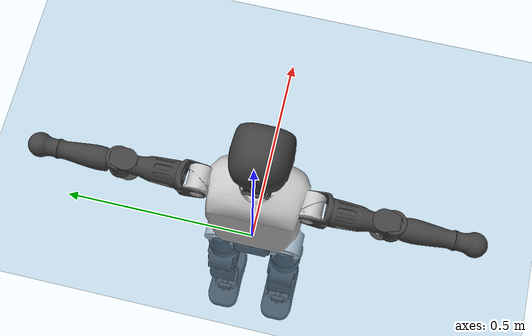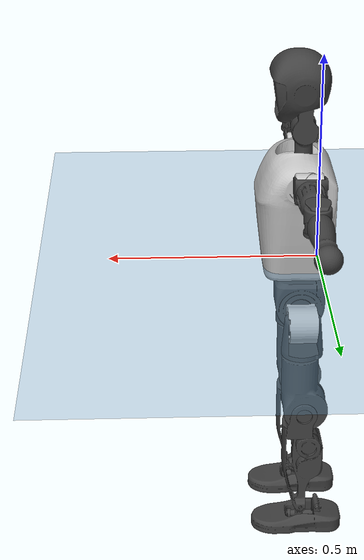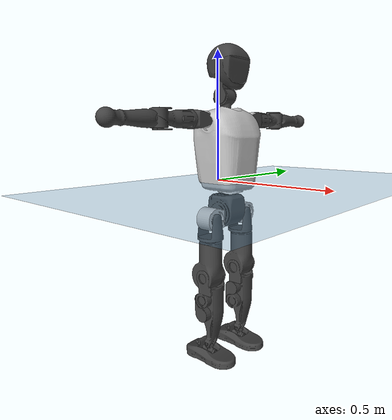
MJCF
<mujoco model="T1">
  <compiler angle="radian" assetdir="assets" balanceinertia="true" inertiafromgeom="false"/>

  <option timestep="0.005" density="1.2" viscosity="2e-05"/>

  <size nkey="1"/>

  <visual>
    <quality shadowsize="8192"/>
    <map shadowclip="0.5"/>
  </visual>

  <default>
    <default class="/">
      <joint armature="0.01" damping="0.01" frictionloss="0.1"/>
      <geom contype="0" conaffinity="0" group="1" solref="-1000 -80"/>
      <site size="0.01 0.005 0.005" group="5"/>
      <general forcelimited="true" biastype="affine" gainprm="25" biasprm="0 -25 -0.6"/>
      <default class="t1">
        <geom rgba="0.25 0.25 0.25 1"/>
        <default class="visual">
          <geom type="mesh" group="2"/>
        </default>
        <default class="collision">
          <geom group="3"/>
        </default>
        <default class="foot">
          <geom size="0.1115 0.05 0.015" type="box" condim="6" group="4" priority="1" solimp="0.015 1 0.015"/>
        </default>
        <default class="reward_collision_sphere">
          <geom group="5" rgba="1 0 0 1"/>
        </default>
      </default>
    </default>
  </default>

  <asset>
    <texture type="skybox" colorspace="auto" name="//unnamed_texture_0" builtin="gradient" rgb1="0.95 0.95 0.95" rgb2="0.95 0.95 0.95" width="100" height="600"/>
    <texture type="2d" colorspace="auto" name="texplane" builtin="checker" rgb1="0.345 0.575 0.748" rgb2="0.345 0.575 0.748" markrgb="1 1 1" width="512" height="512"/>
    <material name="MatPlane" class="/" texture="texplane" texuniform="true" texrepeat="2 2" specular="0.9"/>
    <mesh name="Trunk" class="/" file="Trunk.stl"/>
    <mesh name="H1" class="/" file="H1.stl"/>
    <mesh name="H2" class="/" file="H2.stl"/>
    <mesh name="AL1" class="/" file="AL1.stl"/>
    <mesh name="AL2" class="/" file="AL2.stl"/>
    <mesh name="AL3" class="/" file="AL3.stl"/>
    <mesh name="left_hand_link" class="/" file="left_hand_link.stl"/>
    <mesh name="AR1" class="/" file="AR1.stl"/>
    <mesh name="AR2" class="/" file="AR2.stl"/>
    <mesh name="AR3" class="/" file="AR3.stl"/>
    <mesh name="right_hand_link" class="/" file="right_hand_link.stl"/>
    <mesh name="Waist" class="/" file="Waist.stl"/>
    <mesh name="Hip_Pitch_Left" class="/" file="Hip_Pitch_Left.stl"/>
    <mesh name="Hip_Roll_Left" class="/" file="Hip_Roll_Left.stl"/>
    <mesh name="Hip_Yaw_Left" class="/" file="Hip_Yaw_Left.stl"/>
    <mesh name="Shank_Left" class="/" file="Shank_Left.stl"/>
    <mesh name="Ankle_Cross_Left" class="/" file="Ankle_Cross_Left.stl"/>
    <mesh name="left_foot_link" class="/" file="left_foot_link.stl"/>
    <mesh name="Hip_Pitch_Right" class="/" file="Hip_Pitch_Right.stl"/>
    <mesh name="Hip_Roll_Right" class="/" file="Hip_Roll_Right.stl"/>
    <mesh name="Hip_Yaw_Right" class="/" file="Hip_Yaw_Right.stl"/>
    <mesh name="Shank_Right" class="/" file="Shank_Right.stl"/>
    <mesh name="Ankle_Cross_Right" class="/" file="Ankle_Cross_Right.stl"/>
    <mesh name="right_foot_link" class="/" file="right_foot_link.stl"/>
  </asset>

  <worldbody>
    <geom name="floor" class="/" size="100 100 0.125" type="plane" group="0" material="MatPlane"/>
    <light name="toplight_shadow" class="/" pos="0 0 5" dir="0.0990148 0.0990148 -0.990148" type="directional" ambient="0.04 0.04 0.04" diffuse="0.55 0.55 0.55" specular="0.12 0.12 0.12"/>
    <light name="toplight_fill" class="/" pos="0 0 5" dir="0.0990148 0.0990148 -0.990148" type="directional" castshadow="false" ambient="0.04 0.04 0.04" diffuse="0.3 0.3 0.3" specular="0.08 0.08 0.08"/>
    <body name="trunk" childclass="t1" pos="-0.000994387 -3.96725e-06 0.00258496" quat="0.999999 -0.000171891 -0.00120578 1.83322e-05">
      <inertial pos="0.0341474 -0.00249879 0.113897" quat="0.999953 0.00133488 -0.00944472 0.00158568" mass="7.3425" diaginertia="0.0136454 0.0339537 0.0770774"/>
      <joint name="//unnamed_joint_0" type="free" armature="0" damping="0" frictionloss="0"/>
      <geom name="//unnamed_geom_1" class="visual" rgba="0.76 0.76 0.76 1" mesh="Trunk"/>
      <geom name="//unnamed_geom_2" class="collision" size="0.0647313 0.0863084 0.129463" pos="0.0406718 0 0.127326" type="box"/>
      <geom name="//unnamed_geom_3" class="reward_collision_sphere" size="0.0992546" pos="0.0406718 0 0.106105"/>
      <geom name="//unnamed_geom_4" class="reward_collision_sphere" size="0.0129463" pos="0.0406718 0.0722784 0"/>
      <geom name="//unnamed_geom_5" class="reward_collision_sphere" size="0.0129463" pos="0.0406718 -0.0722784 0"/>
      <geom name="//unnamed_geom_6" class="reward_collision_sphere" size="0.0129463" pos="0.0406718 0.0909858 0.19099"/>
      <geom name="//unnamed_geom_7" class="reward_collision_sphere" size="0.0129463" pos="0.0406718 -0.0909858 0.19099"/>
      <site name="imu" pos="-0.00274529 0.00141772 -0.00350017" size="0.00863084"/>
      <camera name="track" pos="0 -1.70067 0" quat="0.707107 0.707107 0 0" mode="trackcom"/>
      <camera name="ego_camera" pos="0.0826994 0 0.445643" quat="-0.5 -0.5 0.5 0.5"/>
      <body name="H1" pos="0.0420467 -0.00128516 0.255492" quat="1 0.000371802 -5.09126e-05 0.000215711">
        <inertial pos="-0.000653511 -0.0021678 0.0631451" quat="0.763286 -0.0124889 0.00159702 0.645938" mass="0.290123" diaginertia="3.42641e-05 0.000103728 0.000204214"/>
        <joint name="AAHead_yaw" pos="0 0 0" axis="0.0051404 -0.0123254 0.999911" range="-1.56408 1.58833" armature="0.00890614" damping="0.00358209" frictionloss="0.0850963"/>
        <geom name="//unnamed_geom_8" class="visual" mesh="H1"/>
        <body name="H2" pos="-0.000787127 -0.00289104 0.0656933" quat="0.999999 -0.00119264 -0.000392931 -0.000590713">
          <inertial pos="0.00573547 0.000265602 0.105606" quat="0.988782 0.104823 -0.0720693 -0.0782871" mass="0.399259" diaginertia="0.000289093 0.000869576 0.00240832"/>
          <joint name="Head_pitch" pos="0 0 0" axis="-0.00917103 -0.999923 0.00837536" stiffness="0.0084288" range="-1.23521 0.295449" armature="0.00983002" damping="0" frictionloss="0.0871041"/>
          <geom name="//unnamed_geom_9" class="visual" mesh="H2"/>
          <geom name="//unnamed_geom_10" class="collision" size="0.0690467" pos="0.00677864 0 0.116716"/>
          <geom name="//unnamed_geom_11" class="reward_collision_sphere" size="0.0776775" pos="0.0135573 0 0.106105"/>
        </body>
      </body>
      <body name="AL1" pos="0.041441 0.0935458 0.23478" quat="0.999999 0.00109418 0.000609208 0.000358493">
        <inertial pos="-0.000996281 0.0399814 -0.000292971" quat="0.505098 0.494731 -0.505054 0.495013" mass="0.337605" diaginertia="0.000202778 0.000558608 0.000382072"/>
        <joint name="Left_Shoulder_Pitch" pos="0 0 0" axis="-0.000287528 0.999995 -0.00312587" range="-3.25243 1.23187" armature="0.0078186" damping="0.0025032" frictionloss="0.0746003"/>
        <geom name="//unnamed_geom_12" class="visual" rgba="0.76 0.76 0.76 1" mesh="AL1"/>
        <body name="AL2" pos="-0.0018831 0.0438666 7.79162e-05" quat="1 1.41778e-05 -0.000101943 -0.000108772">
          <inertial pos="0.00217782 0.0307792 0.00120194" quat="0.490036 0.510153 -0.490914 0.508539" mass="0.108017" diaginertia="5.90178e-05 0.000156256 0.000253781"/>
          <joint name="Left_Shoulder_Roll" pos="0 0 0" axis="-0.999985 0.00262526 0.00475161" stiffness="0.0100719" range="-1.55726 1.75479" armature="0.00842467" damping="0" frictionloss="0.0857943"/>
          <geom name="//unnamed_geom_13" class="visual" mesh="AL2"/>
          <body name="AL3" pos="0.00298131 0.0524224 -0.000562034" quat="1 0.000155369 -3.96905e-05 -8.47504e-05">
            <inertial pos="0.00233558 0.0725681 1.26292e-05" quat="0.707509 0.706568 0.00341154 -0.0134704" mass="0.637348" diaginertia="0.00173622 0.0057158 0.000811885"/>
            <joint name="Left_Elbow_Pitch" pos="0 0 0" axis="0.00054739 -1 0.000765508" stiffness="0.00475653" range="-2.26169 2.30943" armature="0.00883339" damping="0.021306" frictionloss="0.0758412"/>
            <geom name="//unnamed_geom_14" class="visual" mesh="AL3"/>
            <geom name="//unnamed_geom_15" class="collision" size="0.0258925 0.0647313" pos="0 0.0425167 0" quat="0.707105 0.707108 0 0" type="cylinder"/>
            <geom name="//unnamed_geom_16" class="reward_collision_sphere" size="0.031071"/>
            <body name="left_hand_link" pos="-0.00192117 0.127556 0.000765415" quat="0.999999 0.00010396 -0.00112054 -0.000776019">
              <inertial pos="0.000855915 0.0936866 0.00325994" quat="0.708441 0.70577 -5.34502e-06 -0.000776468" mass="0.212941" diaginertia="0.00120895 0.00374475 0.00029645"/>
              <joint name="Left_Elbow_Yaw" pos="0 0 0" axis="-0.00725126 0.00754665 0.999945" range="-2.49816 -0.016571" armature="0.00895764" damping="0.00726484" frictionloss="0.0742608"/>
              <geom name="//unnamed_geom_17" class="visual" mesh="left_hand_link"/>
              <geom name="//unnamed_geom_18" class="collision" size="0.0258925 0.0755198" pos="0 0.110543 0" quat="0.707105 0.707108 0 0" type="cylinder"/>
              <geom name="//unnamed_geom_19" class="reward_collision_sphere" size="0.0431542"/>
              <geom name="//unnamed_geom_20" class="reward_collision_sphere" size="0.0302079" pos="0 0.0935368 0"/>
              <geom name="//unnamed_geom_21" class="reward_collision_sphere" size="0.0302079" pos="0 0.182822 0"/>
            </body>
          </body>
        </body>
      </body>
      <body name="AR1" pos="0.0370288 -0.0864416 0.2311" quat="1 0.000266936 0.000443923 -0.000114594">
        <inertial pos="-0.00144057 -0.0361009 0.00232167" quat="0.504889 0.494967 -0.504679 0.495372" mass="0.348314" diaginertia="0.000186436 0.000547842 0.000391186"/>
        <joint name="Right_Shoulder_Pitch" pos="0 0 0" axis="0.00160863 -0.99999 -0.00405486" stiffness="0.00151416" range="-1.22106 3.32011" armature="0.0081175" damping="0.0114655" frictionloss="0.0756882"/>
        <geom name="//unnamed_geom_22" class="visual" rgba="0.76 0.76 0.76 1" mesh="AR1"/>
        <body name="AR2" pos="-0.00202049 -0.041098 -0.000282724" quat="1 -0.000336814 -0.0003846 0.000765701">
          <inertial pos="0.00480654 -0.0323117 0.00316647" quat="0.511931 0.487742 -0.511163 0.488618" mass="0.103781" diaginertia="5.67205e-05 0.00015573 0.000245483"/>
          <joint name="Right_Shoulder_Roll" pos="0 0 0" axis="-0.999811 0.0178819 0.00767295" range="-1.68237 1.57612" armature="0.00776746" damping="0.0190102" frictionloss="0.0876324"/>
          <geom name="//unnamed_geom_23" class="visual" mesh="AR2"/>
          <body name="AR3" pos="5.62073e-05 -0.0524804 -9.64022e-05" quat="1 0.000120791 2.18986e-05 -3.22671e-05">
            <inertial pos="-0.000843496 -0.0733485 0.00190884" quat="0.714907 0.699195 0.00499294 0.00318583" mass="0.668986" diaginertia="0.00191113 0.0055378 0.000859218"/>
            <joint name="Right_Elbow_Pitch" pos="0 0 0" axis="0.0139394 0.999895 -0.00400882" stiffness="0.00706544" range="-2.21603 2.22327" armature="0.0086875" damping="0.0172441" frictionloss="0.0849946"/>
            <geom name="//unnamed_geom_24" class="visual" mesh="AR3"/>
            <geom name="//unnamed_geom_25" class="collision" size="0.0258925 0.0647313" pos="0 -0.0425167 0" quat="0.707105 0.707108 0 0" type="cylinder"/>
            <geom name="//unnamed_geom_26" class="reward_collision_sphere" size="0.031071"/>
            <body name="right_hand_link" pos="-0.000853291 -0.124788 -0.00187291" quat="0.999999 0.00137465 0.000152741 3.99823e-05">
              <inertial pos="-0.000588514 -0.0937657 -0.00141214" quat="0.707191 0.707016 0.00121421 0.00260271" mass="0.205498" diaginertia="0.00119648 0.00363194 0.000282013"/>
              <joint name="Right_Elbow_Yaw" pos="0 0 0" axis="0.00189435 0.00319858 0.999993" range="0.00201806 2.42413" armature="0.00850661" damping="0" frictionloss="0.0973933"/>
              <geom name="//unnamed_geom_27" class="visual" mesh="right_hand_link"/>
              <geom name="//unnamed_geom_28" class="collision" size="0.0258925 0.0755198" pos="0 -0.110543 0" quat="0.707105 0.707108 0 0" type="cylinder"/>
              <geom name="//unnamed_geom_29" class="reward_collision_sphere" size="0.0431542"/>
              <geom name="//unnamed_geom_30" class="reward_collision_sphere" size="0.0302079" pos="0 -0.0935368 0"/>
              <geom name="//unnamed_geom_31" class="reward_collision_sphere" size="0.0302079" pos="0 -0.182822 0"/>
            </body>
          </body>
        </body>
      </body>
      <body name="Waist" pos="0.0416395 0.00171217 -0.122852" quat="0.999999 0.000950312 0.000981276 0.000764436">
        <inertial pos="0.00202951 0.00185014 0.00814595" quat="0.983328 0.00205661 -0.181815 0.00204858" mass="1.57322" diaginertia="0.000746553 0.00224354 0.00641427"/>
        <joint name="Waist" pos="0 0 0" axis="2.19344e-05 -3.90327e-05 1" stiffness="0.00571856" range="-1.52591 1.52674" armature="0.007417" damping="0.0117141" frictionloss="0.088254"/>
        <geom name="//unnamed_geom_32" class="visual" mesh="Waist"/>
        <body name="Hip_Pitch_Left" pos="0.000194549 0.0919331 0.002272" quat="1 0.000133513 0.000220229 6.06268e-05">
          <inertial pos="-0.00180004 -0.00586928 -0.0181517" quat="0.976152 0.216512 0.0158127 0.000554522" mass="0.677302" diaginertia="0.000256935 0.000634556 0.00169003"/>
          <joint name="Left_Hip_Pitch" pos="0 0 0" axis="-0.00386206 0.999991 -0.00158145" stiffness="0.00222748" range="-1.83669 1.55374" armature="0.00761899" damping="0.0147104" frictionloss="0.0871371"/>
          <geom name="//unnamed_geom_33" class="visual" rgba="0.76 0.76 0.76 1" mesh="Hip_Pitch_Left"/>
          <body name="Hip_Roll_Left" pos="0.00061464 -0.00351608 -0.0209287" quat="1 -0.000121178 0.000649731 0.000161241">
            <inertial pos="0.00329973 -0.0029319 -0.0576307" quat="0.705538 -0.00721367 -0.00639266 0.708607" mass="0.244638" diaginertia="0.00025282 0.000682804 0.000713237"/>
            <joint name="Left_Hip_Roll" pos="0 0 0" axis="-0.999951 0.000348369 -0.00991997" range="-1.56424 0.184743" armature="0.00958621" damping="0.0176534" frictionloss="0.0850152"/>
            <geom name="//unnamed_geom_34" class="visual" mesh="Hip_Roll_Left"/>
            <geom name="//unnamed_geom_35" class="reward_collision_sphere" size="0.0474696"/>
            <body name="Hip_Yaw_Left" pos="0.00194178 0.00278219 -0.0847343" quat="1 -3.40527e-05 -0.000237312 9.53281e-05">
              <inertial pos="-0.00498049 -0.000940607 -0.0939307" quat="0.692896 -0.0415964 -0.0332938 0.719067" mass="1.39987" diaginertia="0.00368342 0.0112518 0.00349879"/>
              <joint name="Left_Hip_Yaw" pos="0 0 0" axis="-0.00770979 -0.00374366 -0.999963" stiffness="0.00926009" range="-0.980615 1.02502" armature="0.00843302" damping="0" frictionloss="0.0975567"/>
              <geom name="//unnamed_geom_36" class="visual" mesh="Hip_Yaw_Left"/>
              <geom name="//unnamed_geom_37" class="collision" size="0.0431542 0.0690467" type="cylinder"/>
              <body name="Shank_Left" pos="-0.0106006 -0.000769024 -0.145548" quat="0.999999 0.000817551 -0.000582071 0.000474525">
                <inertial pos="-0.0042457 -0.00237919 -0.129337" quat="0.997733 -0.00248475 -0.0203719 0.064097" mass="1.08386" diaginertia="0.0048578 0.0156469 0.00245957"/>
                <joint name="Left_Knee_Pitch" pos="0 0 0" axis="0.00383426 0.999834 0.0178212" stiffness="0.00087717" range="0.0147284 2.30949" armature="0.0096704" damping="0" frictionloss="0.0867827"/>
                <geom name="//unnamed_geom_38" class="visual" mesh="Shank_Left"/>
                <geom name="//unnamed_geom_39" class="collision" size="0.0431542 0.0647313" pos="0 0 -0.127326" type="cylinder"/>
                <geom name="//unnamed_geom_40" class="reward_collision_sphere" size="0.0561005"/>
                <body name="Ankle_Cross_Left" pos="0.00257637 -0.00262861 -0.298556" quat="0.999999 0.000335466 0.00131974 0.000524509">
                  <inertial pos="-0.00214327 -0.00112543 -0.00634375" quat="0.438278 0.559991 0.546929 0.441804" mass="0.046212" diaginertia="4.34165e-06 1.16598e-05 1.55911e-05"/>
                  <joint name="Left_Ankle_Pitch" pos="0 0 0" axis="-0.00156494 0.999995 -0.0027362" stiffness="0.00352411" range="-0.874717 0.358878" armature="0.00984449" damping="0.0130698" frictionloss="0.0981528"/>
                  <geom name="//unnamed_geom_41" class="visual" mesh="Ankle_Cross_Left"/>
                  <body name="left_foot_link" pos="-0.00308821 -0.00310337 -0.0139923" quat="1 2.20234e-05 0.000155548 -5.75206e-06">
                    <inertial pos="-0.00196721 0.00171329 -0.0103839" quat="-0.0066207 0.619607 -0.00768619 0.784847" mass="0.435677" diaginertia="0.000368349 0.00103455 0.00288946"/>
                    <joint name="Left_Ankle_Roll" pos="0 0 0" axis="-0.999972 -0.00684193 -0.00314527" range="-0.453237 0.442239" armature="0.00879094" damping="0.00946273" frictionloss="0.0821174"/>
                    <geom name="//unnamed_geom_42" class="visual" mesh="left_foot_link"/>
                    <geom name="left_foot" class="foot" size="0.10315 0.0436998 0.0124059" pos="0.00677864 0 -0.0159158"/>
                    <geom name="//unnamed_geom_44" class="reward_collision_sphere" size="0.0448804" pos="0.00677864 0 -0.0159158"/>
                    <geom name="//unnamed_geom_45" class="reward_collision_sphere" size="0.0258925" pos="0.064397 -0.0195577 -0.0159158"/>
                    <geom name="//unnamed_geom_46" class="reward_collision_sphere" size="0.0258925" pos="-0.0474504 -0.0195577 -0.0159158"/>
                    <site name="left_foot" class="foot" pos="0.00677864 0 -0.0159158" size="0.00863084"/>
                  </body>
                </body>
              </body>
            </body>
          </body>
        </body>
        <body name="Hip_Pitch_Right" pos="-0.00168509 -0.0909098 0.000697937" quat="1 -0.000664296 -0.000225715 -0.000329511">
          <inertial pos="-0.00235682 0.00647169 -0.0216914" quat="0.973484 -0.228239 0.0147087 -0.00444752" mass="0.637034" diaginertia="0.000259894 0.000675458 0.00163589"/>
          <joint name="Right_Hip_Pitch" pos="0 0 0" axis="0.00215909 -0.999998 -0.000403173" range="-1.5892 1.74238" armature="0.00964703" damping="0.00837061" frictionloss="0.0855148"/>
          <geom name="//unnamed_geom_47" class="visual" rgba="0.76 0.76 0.76 1" mesh="Hip_Pitch_Right"/>
          <body name="Hip_Roll_Right" pos="0.00165924 -0.00173694 -0.0216565" quat="1 -0.00023229 0.000237373 0.000748816">
            <inertial pos="0.000943551 0.00259005 -0.0571422" quat="0.712231 0.000706216 -0.000666493 0.701945" mass="0.245524" diaginertia="0.000250624 0.000677926 0.000692128"/>
            <joint name="Right_Hip_Roll" pos="0 0 0" axis="-0.999868 0.00914751 0.013454" stiffness="0.0185689" range="-0.214057 1.56322" armature="0.00729658" damping="0.00811954" frictionloss="0.0865432"/>
            <geom name="//unnamed_geom_48" class="visual" mesh="Hip_Roll_Right"/>
            <geom name="//unnamed_geom_49" class="reward_collision_sphere" size="0.0474696"/>
            <body name="Hip_Yaw_Right" pos="-0.0016301 -0.000960045 -0.0870751" quat="1 -5.68766e-05 -3.50243e-05 -0.000101462">
              <inertial pos="-0.0070758 -0.000250843 -0.0946031" quat="0.718727 -0.0382175 -0.0357054 0.693323" mass="1.44" diaginertia="0.00368326 0.011351 0.00351759"/>
              <joint name="Right_Hip_Yaw" pos="0 0 0" axis="-0.00238939 -0.00860484 -0.99996" range="-0.976187 0.947421" armature="0.00836889" damping="0" frictionloss="0.0860704"/>
              <geom name="//unnamed_geom_50" class="visual" mesh="Hip_Yaw_Right"/>
              <geom name="//unnamed_geom_51" class="collision" size="0.0431542 0.0690467" type="cylinder"/>
              <body name="Shank_Right" pos="-0.00770771 0.001506 -0.139467" quat="1 0.000487741 -0.000288918 -3.86845e-05">
                <inertial pos="-0.00469148 0.00131855 -0.132912" quat="0.999432 0.000165485 -0.0253712 -0.0221596" mass="1.09096" diaginertia="0.00493558 0.0154741 0.00257593"/>
                <joint name="Right_Knee_Pitch" pos="0 0 0" axis="-0.0033902 -0.99998 0.00534544" stiffness="0.0012473" range="-2.32224 0.0110959" armature="0.00970355" damping="0" frictionloss="0.0952429"/>
                <geom name="//unnamed_geom_52" class="visual" mesh="Shank_Right"/>
                <geom name="//unnamed_geom_53" class="collision" size="0.0431542 0.0647313" pos="0 0 -0.127326" type="cylinder"/>
                <geom name="//unnamed_geom_54" class="reward_collision_sphere" size="0.0561005"/>
                <body name="Ankle_Cross_Right" pos="-0.00311382 -0.00047758 -0.29725" quat="1 -1.9356e-06 -0.000161798 0.00023646">
                  <inertial pos="-0.0036566 0.000828247 -0.00862617" quat="0.442379 0.548031 0.553983 0.443921" mass="0.0466241" diaginertia="4.11625e-06 1.14129e-05 1.48812e-05"/>
                  <joint name="Right_Ankle_Pitch" pos="0 0 0" axis="0.0105362 -0.999942 0.00230922" stiffness="0.00678316" range="-0.406698 0.871839" armature="0.00901544" damping="0.0185012" frictionloss="0.0873726"/>
                  <geom name="//unnamed_geom_55" class="visual" mesh="Ankle_Cross_Right"/>
                  <body name="right_foot_link" pos="0.000636059 -0.00168203 -0.01497" quat="1 0.000496256 -0.000856252 0.000118692">
                    <inertial pos="-0.00221309 -0.000591935 -0.00979786" quat="-0.00275405 0.620801 -0.0102316 0.783897" mass="0.440007" diaginertia="0.000382628 0.0010233 0.00284441"/>
                    <joint name="Right_Ankle_Roll" pos="0 0 0" axis="-0.999993 -0.00111874 0.00359174" stiffness="0.00807572" range="-0.383648 0.383027" armature="0.00948632" damping="0.00817013" frictionloss="0.0921124"/>
                    <geom name="//unnamed_geom_56" class="visual" mesh="right_foot_link"/>
                    <geom name="right_foot" class="foot" size="0.089765 0.0429976 0.0130561" pos="0.00677864 0 -0.0159158"/>
                    <geom name="//unnamed_geom_58" class="reward_collision_sphere" size="0.0345234"/>
                    <geom name="//unnamed_geom_59" class="reward_collision_sphere" size="0.0258925" pos="0.00677864 0 -0.0159158"/>
                    <geom name="//unnamed_geom_60" class="reward_collision_sphere" size="0.0258925" pos="0.064397 0.0195577 -0.0159158"/>
                    <geom name="//unnamed_geom_61" class="reward_collision_sphere" size="0.0258925" pos="-0.0474504 0.0195577 -0.0159158"/>
                    <site name="right_foot" class="foot" pos="0.00677864 0 -0.0159158" size="0.00863084"/>
                  </body>
                </body>
              </body>
            </body>
          </body>
        </body>
      </body>
    </body>
  </worldbody>

  <contact>
    <pair class="/" geom1="floor" geom2="left_foot" name="//unnamed_contact_0"/>
    <pair class="/" geom1="floor" geom2="right_foot" name="//unnamed_contact_1"/>
  </contact>

  <actuator>
    <general name="AAHead_yaw" class="/" joint="AAHead_yaw" forcerange="-5.57125 5.57125" gainprm="21.338" biasprm="0 -21.338 -0.48059"/>
    <general name="Head_pitch" class="/" joint="Head_pitch" forcerange="-6.38501 6.38501" gainprm="21.338" biasprm="0 -21.338 -0.48059"/>
    <general name="Left_Shoulder_Pitch" class="/" joint="Left_Shoulder_Pitch" forcerange="-15.3547 15.3547" gainprm="21.338" biasprm="0 -21.338 -0.48059"/>
    <general name="Left_Shoulder_Roll" class="/" joint="Left_Shoulder_Roll" forcerange="-13.847 13.847" gainprm="21.338" biasprm="0 -21.338 -0.48059"/>
    <general name="Left_Elbow_Pitch" class="/" joint="Left_Elbow_Pitch" forcerange="-15.4608 15.4608" gainprm="21.338" biasprm="0 -21.338 -0.48059"/>
    <general name="Left_Elbow_Yaw" class="/" joint="Left_Elbow_Yaw" forcerange="-16.262 16.262" gainprm="21.338" biasprm="0 -21.338 -0.48059"/>
    <general name="Right_Shoulder_Pitch" class="/" joint="Right_Shoulder_Pitch" forcerange="-16.0816 16.0816" gainprm="21.338" biasprm="0 -21.338 -0.48059"/>
    <general name="Right_Shoulder_Roll" class="/" joint="Right_Shoulder_Roll" forcerange="-14.0069 14.0069" gainprm="21.338" biasprm="0 -21.338 -0.48059"/>
    <general name="Right_Elbow_Pitch" class="/" joint="Right_Elbow_Pitch" forcerange="-15.6831 15.6831" gainprm="21.338" biasprm="0 -21.338 -0.48059"/>
    <general name="Right_Elbow_Yaw" class="/" joint="Right_Elbow_Yaw" forcerange="-15.7044 15.7044" gainprm="21.338" biasprm="0 -21.338 -0.48059"/>
    <general name="Waist" class="/" joint="Waist" forcerange="-26.8695 26.8695" gainprm="21.338" biasprm="0 -21.338 -0.48059"/>
    <general name="Left_Hip_Pitch" class="/" joint="Left_Hip_Pitch" forcerange="-34.9841 34.9841" gainprm="21.338" biasprm="0 -21.338 -0.48059"/>
    <general name="Left_Hip_Roll" class="/" joint="Left_Hip_Roll" forcerange="-26.7526 26.7526" gainprm="21.338" biasprm="0 -21.338 -0.48059"/>
    <general name="Left_Hip_Yaw" class="/" joint="Left_Hip_Yaw" forcerange="-25.8029 25.8029" gainprm="21.338" biasprm="0 -21.338 -0.48059"/>
    <general name="Left_Knee_Pitch" class="/" joint="Left_Knee_Pitch" forcerange="-51.4111 51.4111" gainprm="21.338" biasprm="0 -21.338 -0.48059"/>
    <general name="Left_Ankle_Pitch" class="/" joint="Left_Ankle_Pitch" forcerange="-17.0397 17.0397" gainprm="21.338" biasprm="0 -21.338 -0.48059"/>
    <general name="Left_Ankle_Roll" class="/" joint="Left_Ankle_Roll" forcerange="-12.8354 12.8354" gainprm="21.338" biasprm="0 -21.338 -0.48059"/>
    <general name="Right_Hip_Pitch" class="/" joint="Right_Hip_Pitch" forcerange="-41.9326 41.9326" gainprm="21.338" biasprm="0 -21.338 -0.48059"/>
    <general name="Right_Hip_Roll" class="/" joint="Right_Hip_Roll" forcerange="-26.036 26.036" gainprm="21.338" biasprm="0 -21.338 -0.48059"/>
    <general name="Right_Hip_Yaw" class="/" joint="Right_Hip_Yaw" forcerange="-28.6545 28.6545" gainprm="21.338" biasprm="0 -21.338 -0.48059"/>
    <general name="Right_Knee_Pitch" class="/" joint="Right_Knee_Pitch" forcerange="-50.7466 50.7466" gainprm="21.338" biasprm="0 -21.338 -0.48059"/>
    <general name="Right_Ankle_Pitch" class="/" joint="Right_Ankle_Pitch" forcerange="-16.2954 16.2954" gainprm="21.338" biasprm="0 -21.338 -0.48059"/>
    <general name="Right_Ankle_Roll" class="/" joint="Right_Ankle_Roll" forcerange="-13.0052 13.0052" gainprm="21.338" biasprm="0 -21.338 -0.48059"/>
  </actuator>

  <sensor>
    <gyro site="imu" name="imu_angular_velocity"/>
    <velocimeter site="imu" name="imu_linear_velocity"/>
    <framelinvel objtype="site" objname="left_foot" name="left_foot_global_linear_velocity"/>
    <framelinvel objtype="site" objname="right_foot" name="right_foot_global_linear_velocity"/>
  </sensor>

  <keyframe>
    <key name="home" qpos="0 0 0.6385 1 0 0 0 0 0 0 1.4 0 -0.4 0 -1.4 0 0.4 0 -0.4 0 0 0.8 -0.4 0 0.4 0 0 -0.8 0.4 0"/>
  </keyframe>
</mujoco>
